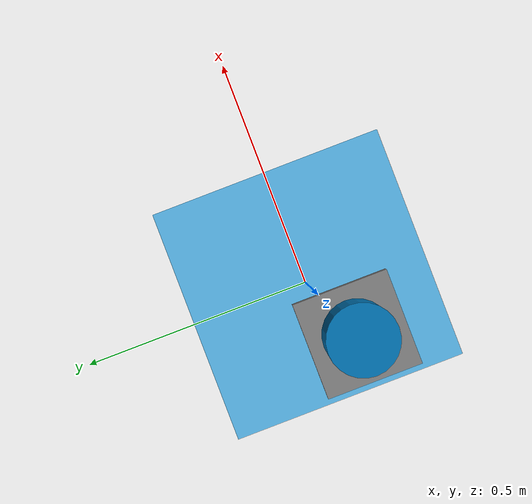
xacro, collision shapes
<?xml version="1.0"?>
<robot xmlns:xacro="http://www.ros.org/wiki/xacro" name="os1_example">

  <!-- Arg for selecting Ouster type -->
  <xacro:arg name="ouster_type" default="OS1-64"/>
  <xacro:property name="ouster_type" value="$(arg ouster_type)"/>

  <!-- Base Footprint -->
  <link name="base_footprint" />

  <!-- Base Link -->
  <joint name="footprint" type="fixed" >
   <parent link="base_footprint" />
    <child link="base_link" />
    <origin xyz="0 0 0.05" rpy="0 0 0" />
  </joint>
  <link name="base_link" >
    <visual>
      <geometry>
        <box size="0.5 0.5 0.1" />
      </geometry>
    </visual>
    <collision>
      <geometry>
        <box size="0.5 0.5 0.1" />
      </geometry>
    </collision>
    <inertial>
      <origin xyz="0 0 0"/>
      <mass value="10"/>
      <inertia ixx="3.0" ixy="0.0" ixz="0.0"
               iyy="3.0" iyz="0.0"
               izz="3.0" />
    </inertial>
  </link>

  <xacro:include filename="$(find ouster_description)/urdf/OS0-32.urdf.xacro"/>
  <xacro:include filename="$(find ouster_description)/urdf/OS1-64.urdf.xacro"/>

  <xacro:if value="${ouster_type == 'OS0-32'}">
    <xacro:OS0-32 parent="base_link" name="os0_sensor" hz="10" samples="512">
      <origin xyz="0 0 1.2" rpy="0 0 0" />
    </xacro:OS0-32>
  </xacro:if>

  <xacro:if value="${ouster_type == 'OS1-64'}">
    <xacro:OS1-64 parent="base_link" name="os1_sensor" hz="10" samples="512">
      <origin xyz="0 0 1.2" rpy="0 0 0" />
    </xacro:OS1-64>
  </xacro:if>
</robot>

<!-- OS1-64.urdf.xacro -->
<robot xmlns:xacro="http://www.ros.org/wiki/xacro" name="OS1-64">
  <xacro:property name="M_PI" value="3.1415926535897931" />
  <xacro:property name="rev6_lidar_z" value="0.03622"/>
  <xacro:property name="rev7_lidar_z" value="0.038195"/>

  <xacro:macro name="OS1-64" params="rev:=rev6 *origin parent:=base_link name:=os1_sensor topic_points:=/ouster/points topic_imu:=/ouster/imu hz:=10 lasers:=64 samples:=512 min_range:=0.9 max_range:=75.0 noise:=0.008 min_angle:=-${M_PI} max_angle:=${M_PI} lidar_link:=os1_lidar imu_link:=os1_imu vfov_min:=-.26 vfov_max:=.26">

    <xacro:if value="${rev == 'rev6'}">
      <xacro:property name="lidar_z" value="${rev6_lidar_z}"/>
    </xacro:if>
    <xacro:if value="${rev == 'rev7'}">
      <xacro:property name="lidar_z" value="${rev7_lidar_z}"/>
    </xacro:if>

    <joint name="${name}_mount_joint" type="fixed">
      <xacro:insert_block name="origin" />
      <parent link="${parent}"/>
      <child link="${name}_base_link"/>
    </joint>

    <link name="${name}_base_link" />

    <joint name="${name}_base_to_baseplate" type="fixed">
      <parent link="${name}_base_link"/>
      <child link="${name}_baseplate" />
      <origin xyz="0 0 0.008"/>
    </joint>

    <link name="${name}_baseplate">
      <visual>
        <geometry>
          <box size="0.112 0.112 0.016" />
        </geometry>
        <material name="silver">
          <color rgba="0.5 0.5 0.5 1.0" />
        </material>
      </visual>
      <collision>
        <geometry>
          <box size="0.112 0.112 0.016" />
        </geometry>
      </collision>
    </link>

    <joint name="${name}_baseplate_to_body" type="fixed">
      <parent link="${name}_baseplate"/>
      <child link="${name}"/>
      <origin xyz="0 0 0.008" rpy="0 0 0" />
    </joint>

    <link name="${name}">
      <inertial>
        <mass value="0.33"/>
        <origin xyz="0 0 0.0365" rpy="0 0 0" />
        <inertia ixx="0.000241148" ixy="0" ixz="0"
                 iyy="0.000241148" iyz="0" izz="0.000264"/>
      </inertial>
      <collision name="base_collision">
        <origin xyz="0 0 0.0365" rpy="0 0 0" />
        <geometry>
 	        <cylinder radius="0.04" length="0.073"/>
        </geometry>
      </collision>
      <visual name="base_visual">
        <origin xyz="0 0 0.03618" rpy="0 0 1.5707" />
        <geometry>
	        <mesh filename="package://ouster_description/meshes/os1_64.dae" />
        </geometry>
      </visual>
    </link>

    <link name="${imu_link}" />

    <link name="${lidar_link}" />

    <!-- The Ouster driver publishes these joints, however, we must define them here for Gazebo and Robot State Publisher -->
    <joint name="${name}_imu_link_joint" type="fixed">
      <parent link="${name}" />
      <child link="${imu_link}" />
      <origin xyz="0.006253 -0.011775 0.007645" rpy="0 0 0" />
    </joint>

    <!-- The lidar frame points backwards towards the sensor plug and is vertical centered in the lidar window -->
    <joint name="${name}_lidar_link_joint" type="fixed">
      <parent link="${name}" />
      <child link="${lidar_link}" />
      <origin xyz="0 0 ${lidar_z}" rpy="0 0 ${M_PI}" />
    </joint>

    <!-- Gazebo requires the ouster_gazebo_plugins package -->
    <gazebo reference="${name}">
      <sensor type="ray" name="${name}-OS1-64">
        <pose>0 0 0 0 0 0</pose>
        <visualize>false</visualize>
        <update_rate>${hz}</update_rate>
        <ray>
          <scan>
            <horizontal>
              <samples>${samples}</samples>
              <resolution>1</resolution>
              <min_angle>${min_angle}</min_angle>
              <max_angle>${max_angle}</max_angle>
            </horizontal>
            <vertical>
              <samples>${lasers}</samples>
              <resolution>1</resolution>
              <min_angle>${vfov_min}</min_angle>
              <max_angle>${vfov_max}</max_angle>
            </vertical>
          </scan>
          <range>
            <min>${min_range}</min>
            <max>${max_range}</max>
            <resolution>0.03</resolution>
          </range>
        </ray>
        <plugin name="gazebo_ros_laser_controller" filename="libgazebo_ros_ouster_laser.so">
          <topicName>${topic_points}</topicName>
          <frameName>${lidar_link}</frameName>
          <min_range>${min_range}</min_range>
          <max_range>${max_range}</max_range>
          <gaussianNoise>${noise}</gaussianNoise>
        </plugin>
      </sensor>
    </gazebo>

    <!-- IMU -->
    <gazebo>
      <plugin name="imu_controller" filename="libhector_gazebo_ros_imu.so">
        <robotNamespace>/</robotNamespace>
        <updateRate>100.0</updateRate>
        <bodyName>${imu_link}</bodyName>
        <topicName>${topic_imu}</topicName>
        <accelDrift>0.005 0.005 0.005</accelDrift>
        <accelGaussianNoise>0.005 0.005 0.005</accelGaussianNoise>
        <rateDrift>0.005 0.005 0.005 </rateDrift>
        <rateGaussianNoise>0.005 0.005 0.005 </rateGaussianNoise>
        <headingDrift>0.005</headingDrift>
        <headingGaussianNoise>0.005</headingGaussianNoise>
      </plugin>
    </gazebo>

  </xacro:macro>
</robot>
